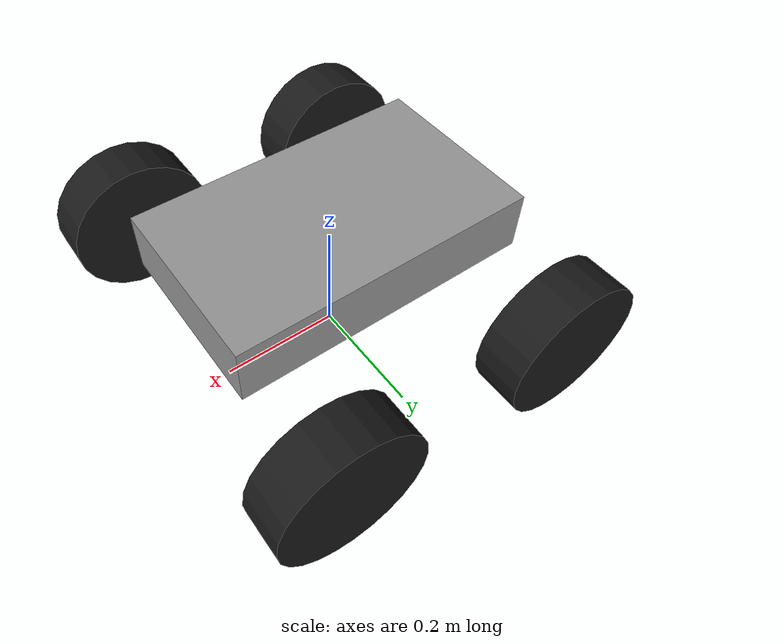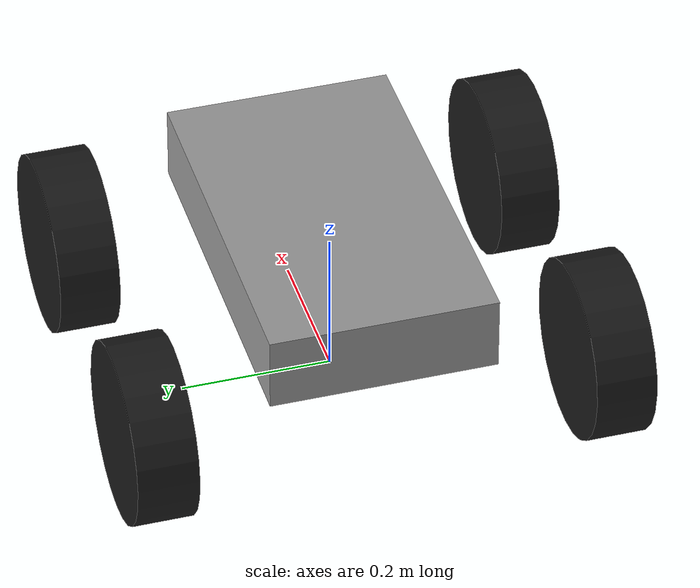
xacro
<?xml version="1.0"?>
<robot xmlns:xacro="http://www.ros.org/wiki/xacro" name="kratos_rover">

    <xacro:property name="chassis_len" value="0.5"/>
    <xacro:property name="chassis_width" value="0.3"/>
    <xacro:property name="chassis_height" value="0.1"/>

    <xacro:property name="wheel_radius" value="0.12"/>
    <xacro:property name="wheel_width" value="0.08"/>

    <xacro:property name="wheel_x_offset" value="0.2"/>
    <xacro:property name="wheel_y_offset" value="0.3"/>
    <xacro:property name="steer_z_offset" value="-0.05"/>
    <xacro:property name="steer_limit" value="1.57"/>

    <material name="gray"><color rgba="0.6 0.6 0.6 1.0"/></material>
    <material name="black"><color rgba="0.1 0.1 0.1 1.0"/></material>
    <material name="blue"><color rgba="0.0 0.3 0.8 1.0"/></material>

    <xacro:include filename="inertial_macros.xacro"/>
    <xacro:include filename="core_chassis.xacro"/>
    <xacro:include filename="wheel_macro.xacro"/>

    <xacro:swerve_wheel prefix="fl" x_reflect="1" y_reflect="1"/>
    <xacro:swerve_wheel prefix="fr" x_reflect="1" y_reflect="-1"/>
    <xacro:swerve_wheel prefix="rl" x_reflect="-1" y_reflect="1"/>
    <xacro:swerve_wheel prefix="rr" x_reflect="-1" y_reflect="-1"/>

    <xacro:include filename="ros2_control.xacro"/>
    <xacro:include filename="gazebo_plugins.xacro"/>

</robot>

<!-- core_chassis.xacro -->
<robot xmlns:xacro="http://www.ros.org/wiki/xacro">

    <link name="base_footprint"/>

    <joint name="base_joint" type="fixed">
        <parent link="base_footprint"/>
        <child link="base_link"/>
        <origin xyz="0 0 0.21" rpy="0 0 0"/>
    </joint>

    <link name="base_link">
        <visual>
            <origin xyz="0 0 0" rpy="0 0 0"/>
            <geometry>
                <box size="${chassis_len} ${chassis_width} ${chassis_height}"/>
            </geometry>
            <material name="gray"/>
        </visual>
        <collision>
            <origin xyz="0 0 0" rpy="0 0 0"/>
            <geometry>
                <box size="${chassis_len} ${chassis_width} ${chassis_height}"/>
            </geometry>
        </collision>
        <xacro:inertial_box mass="15.0" x="${chassis_len}" y="${chassis_width}" z="${chassis_height}">
            <origin xyz="0 0 0" rpy="0 0 0"/>
        </xacro:inertial_box>
    </link>
</robot>

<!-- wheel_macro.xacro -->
<robot xmlns:xacro="http://www.ros.org/wiki/xacro">
    <xacro:macro name="swerve_wheel" params="prefix x_reflect y_reflect">

        <link name="${prefix}_steer_link">
            <visual>
                <origin xyz="0 0 -0.02" rpy="0 0 0"/>
                <geometry>
                    <cylinder radius="0.02" length="0.04"/>
                </geometry>
                <material name="blue"/>
            </visual>
            <xacro:inertial_cylinder mass="0.5" length="0.04" radius="0.02">
                <origin xyz="0 0 -0.02" rpy="0 0 0"/>
            </xacro:inertial_cylinder>
        </link>

        <joint name="${prefix}_steer_joint" type="revolute">
            <parent link="base_link"/>
            <child link="${prefix}_steer_link"/>
            <origin xyz="${x_reflect * wheel_x_offset} ${y_reflect * wheel_y_offset} ${steer_z_offset}" rpy="0 0 0"/>
            <axis xyz="0 0 1"/>
            <limit lower="-${steer_limit}" upper="${steer_limit}" effort="10.0" velocity="2.0"/>
        </joint>

        <link name="${prefix}_wheel_link">
            <visual>
                <origin xyz="0 0 0" rpy="${pi/2} 0 0"/>
                <geometry>
                    <cylinder radius="${wheel_radius}" length="${wheel_width}"/>
                </geometry>
                <material name="black"/>
            </visual>
            <collision>
                <origin xyz="0 0 0" rpy="${pi/2} 0 0"/>
                <geometry>
                    <cylinder radius="${wheel_radius}" length="${wheel_width}"/>
                </geometry>
            </collision>
            <xacro:inertial_cylinder mass="1.5" length="${wheel_width}" radius="${wheel_radius}">
                <origin xyz="0 0 0" rpy="${pi/2} 0 0"/>
            </xacro:inertial_cylinder>
        </link>

        <joint name="${prefix}_drive_joint" type="continuous">
            <parent link="${prefix}_steer_link"/>
            <child link="${prefix}_wheel_link"/>
            <origin xyz="0 0 -0.04" rpy="0 0 0"/>
            <axis xyz="0 1 0"/>
        </joint>
    </xacro:macro>
</robot>
